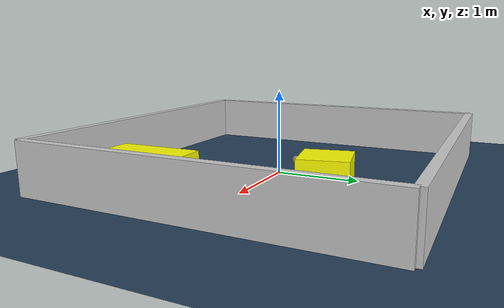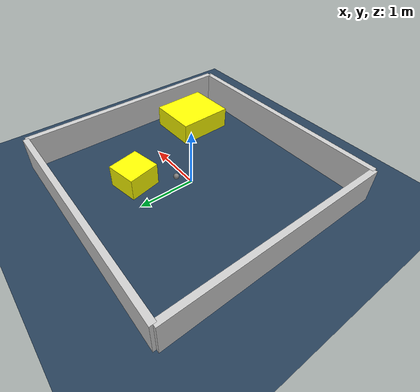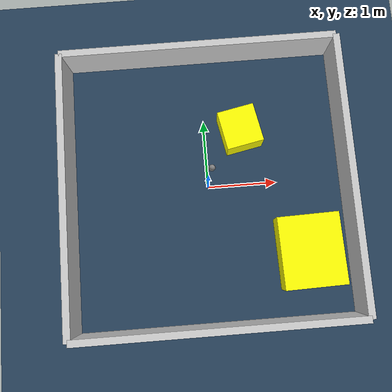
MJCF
<?xml version="1.0" ?>
<mujoco model="generated_environment">
  <option timestep="0.01" integrator="RK4" cone="elliptic"/>
  <default>
    <geom density="1"/>
  </default>
  <asset>
    <texture builtin="gradient" height="3072" rgb1="0.3 0.5 0.7" rgb2="0 0 0" type="skybox" width="512"/>
    <texture builtin="checker" height="300" mark="edge" markrgb="0.8 0.8 0.8" name="groundplane" rgb1="0.2 0.3 0.4" rgb2="0.1 0.2 0.3" type="2d" width="300"/>
    <material name="groundplane" reflectance="0.2" texrepeat="5 5" texture="groundplane" texuniform="true"/>
    <material name="robot" rgba="0.0 1.0 0.0 1"/>
  </asset>
  <worldbody>
    <light dir="0 0 -1" directional="true" pos="0 0 1.5"/>
    <geom condim="4" friction="1.0 0.005 0.001" material="groundplane" name="floor" size="0 0 0.05" type="plane"/>
    <body name="walls">
      <geom name="wall_1" condim="4" pos="-2.0 0.0 0.3" rgba="0.800000011920929 0.800000011920929 0.800000011920929 1.0" size="0.05 2.0 0.3" type="box"/>
      <geom name="wall_2" condim="4" pos="2.0 0.0 0.3" rgba="0.800000011920929 0.800000011920929 0.800000011920929 1.0" size="0.05 2.0 0.3" type="box"/>
      <geom name="wall_3" condim="4" pos="0.0 -2.0 0.3" rgba="0.800000011920929 0.800000011920929 0.800000011920929 1.0" size="2.0 0.05 0.3" type="box"/>
      <geom name="wall_4" condim="4" pos="0.0 2.0 0.3" rgba="0.800000011920929 0.800000011920929 0.800000011920929 1.0" size="2.0 0.05 0.3" type="box"/>
    </body>
    <body name="robot">
      <joint name="joint_x" type="slide" pos="0 0 0" axis="1 0 0"/>
      <joint name="joint_y" type="slide" pos="0 0 0" axis="0 1 0"/>
      <geom name="robot" type="sphere" pos="0.07377851038594807 0.2548587806087843 0.2" size="0.05" mass="5." friction="1.0 0.005 0.0001" condim="4"/>
      <site name="sensor_ball"/>
    </body>
    <body name="obstacle_1_movable">
      <geom name="obstacle_1_movable" condim="4" pos="1.3613281028797946 -1.0481192938696515 0.2" euler="0 0 181.40826011770724" friction="1.0 0.005 0.001" rgba="1 1 0 1" size="0.4381237916358851 0.5051914271827544 0.2" type="box" mass="0.1"/>
      <joint type="free"/>
    </body>
    <body name="obstacle_2_movable">
      <geom name="obstacle_2_movable" condim="4" pos="0.5233919846886255 0.7924173698095736 0.2" euler="0 0 101.4201344170596" friction="1.0 0.005 0.001" rgba="1 1 0 1" size="0.2814239129394957 0.2693617322693883 0.2" type="box" mass="0.1"/>
      <joint type="free"/>
    </body>
  </worldbody>
  <actuator>
    <motor name="actuator_x" joint="joint_x" gear="1" ctrlrange="-1 1"/>
    <motor name="actuator_y" joint="joint_y" gear="1" ctrlrange="-1 1"/>
  </actuator>
</mujoco>
